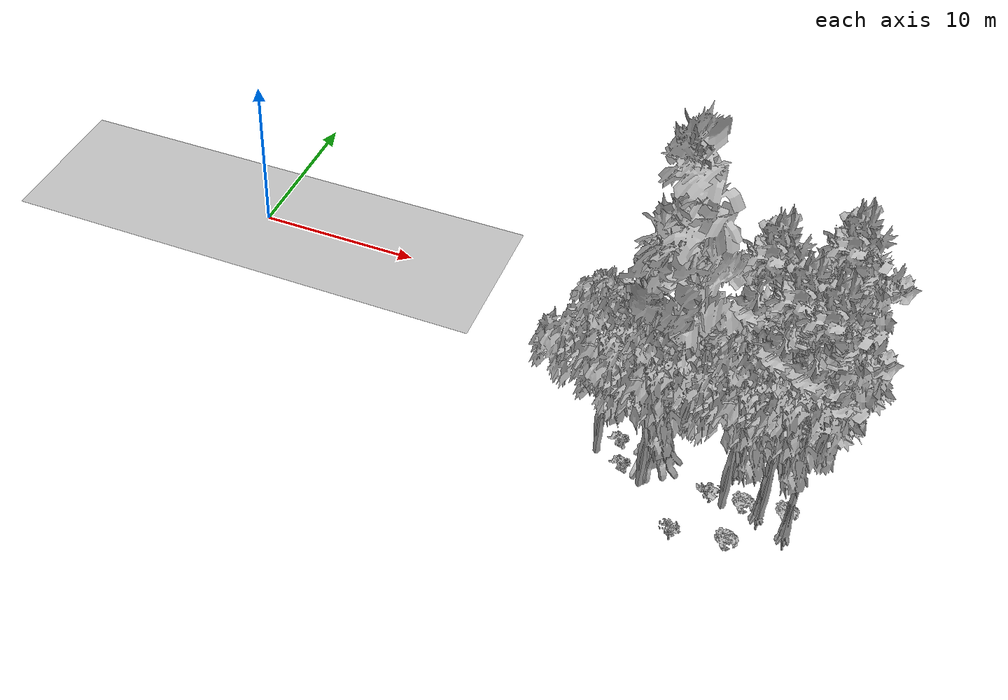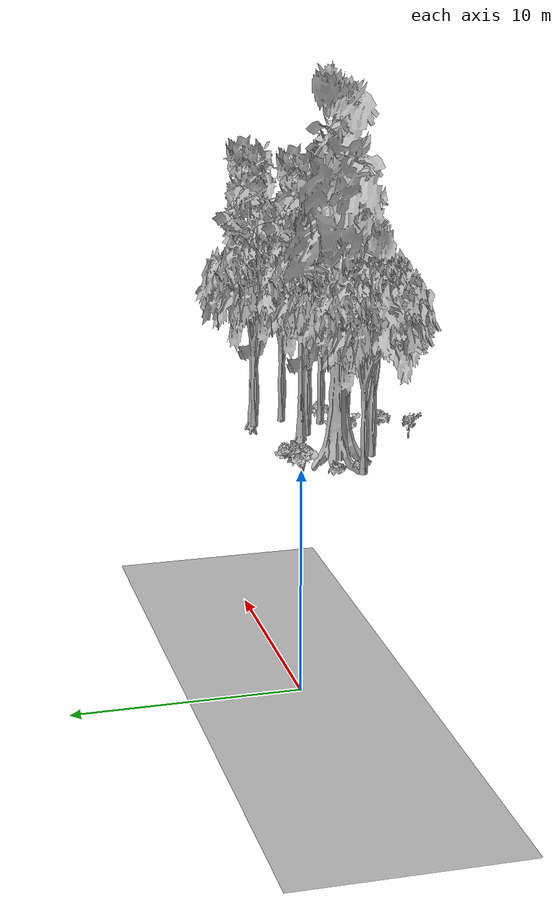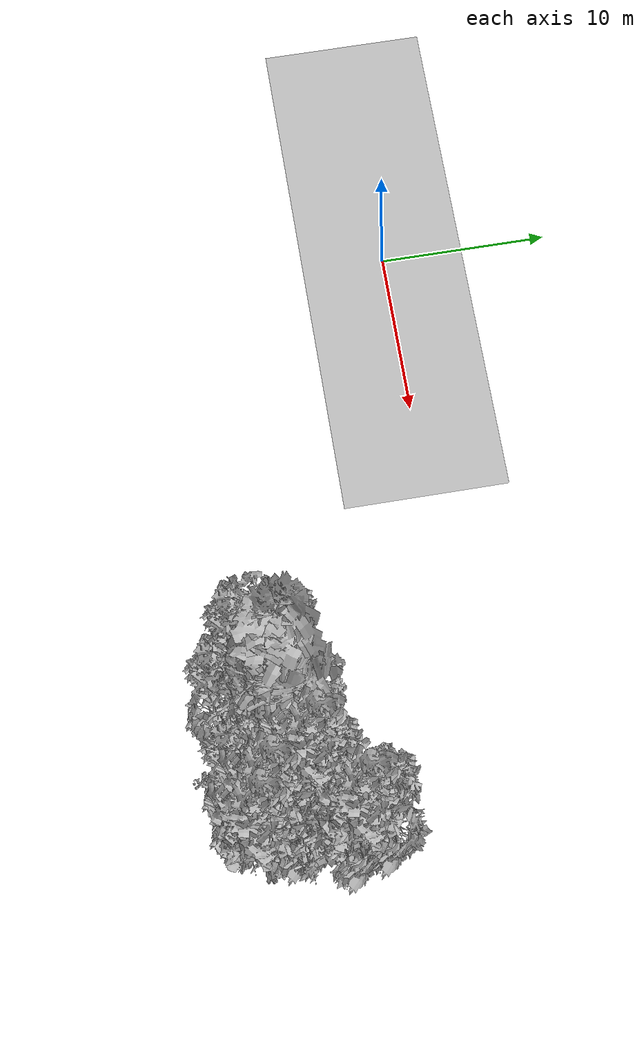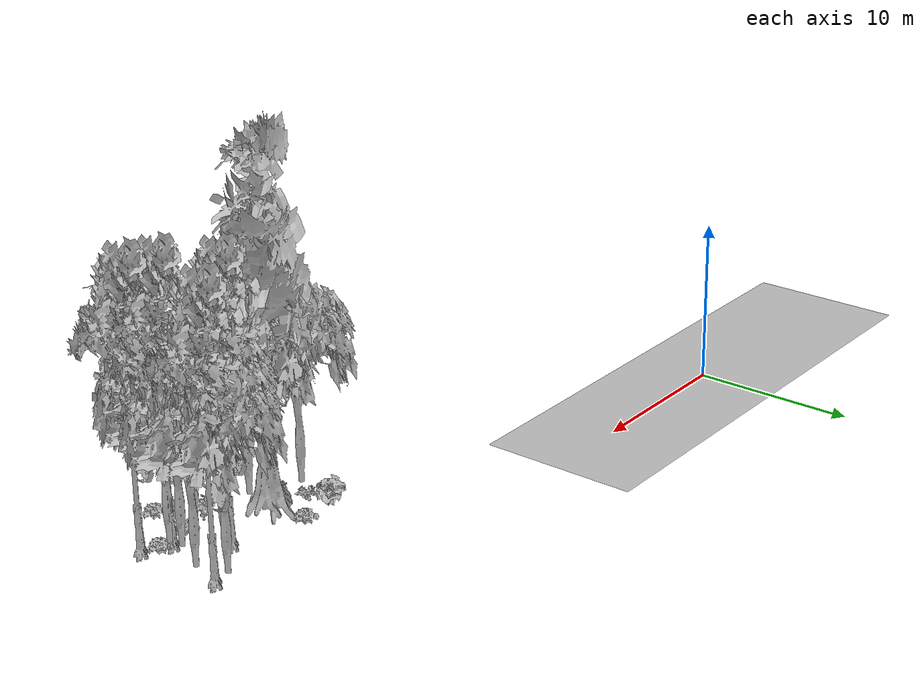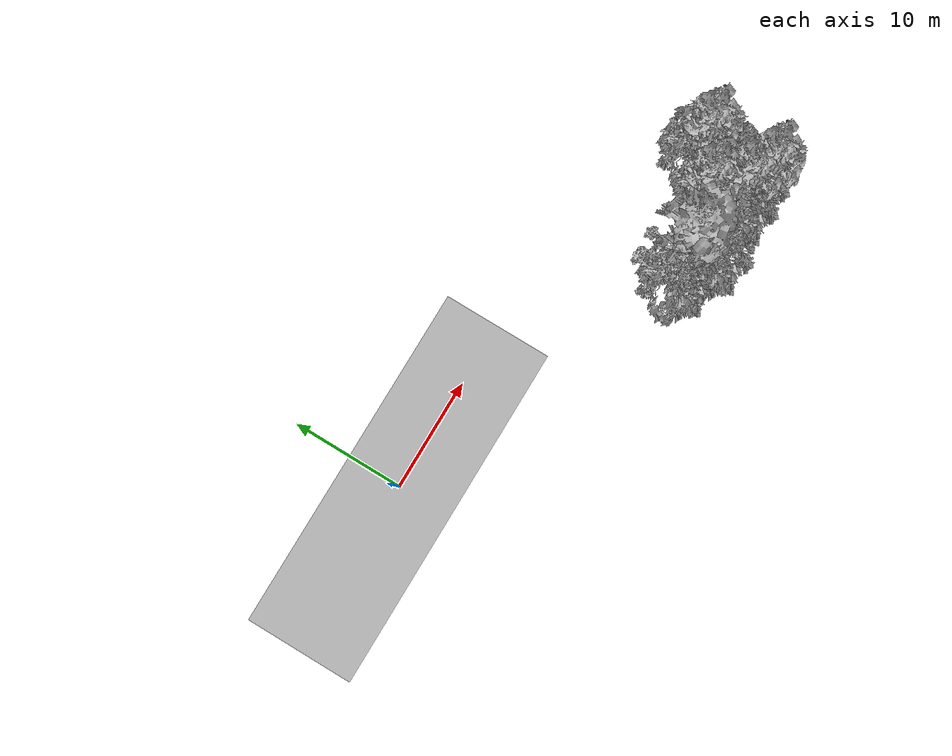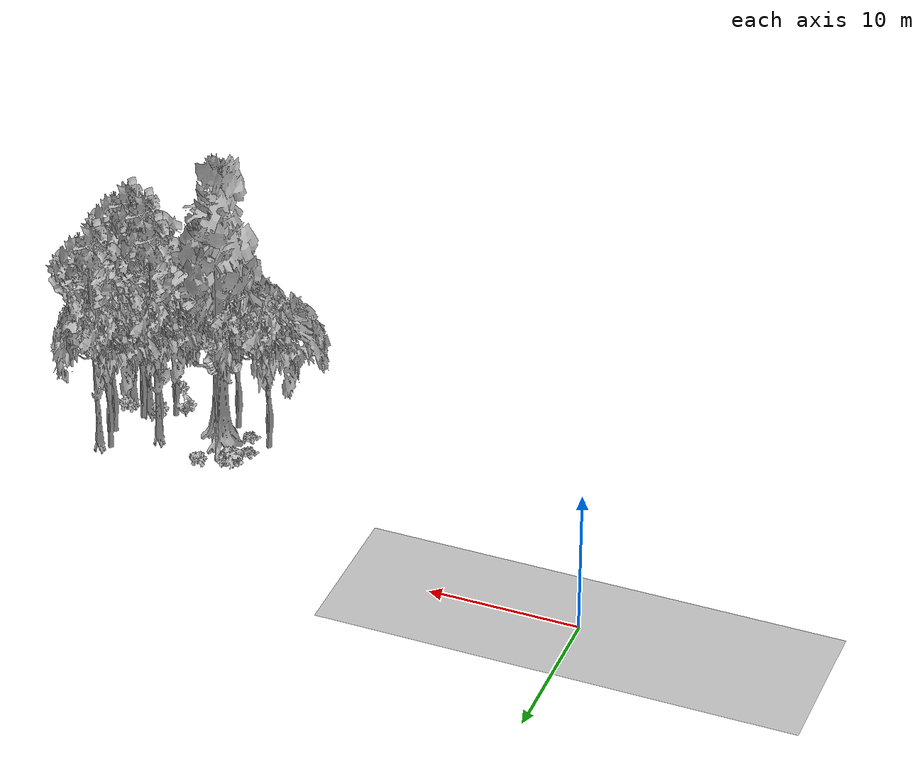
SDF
<sdf version="1.7">
 <world name="default">
  <model name="ground_plane">
   <static>1</static>
   <link name="link">
    <collision name="collision">
     <geometry><plane><normal>0 0 1</normal><size>100 100</size></plane></geometry>
     <surface><contact><ode><min_depth>0.01</min_depth><max_vel>0</max_vel></ode></contact></surface>
    </collision>
    <visual name="grass">
     <cast_shadows>0</cast_shadows>
     <geometry>
      <mesh>
       <scale>0.5814285714285714 0.18142857142857144 0.1</scale>
       <uri>file://grass_plane/meshes/grass_plane.dae</uri>
      </mesh>
     </geometry>
    </visual>
   </link>
  </model>
  <model name="Tree 71">
   <static>1</static>
   <pose>32.85542896784115 -9.391378885305599 0 1.57079 -0 0</pose>
   <link name="link">
    <collision name="collision">
     <geometry><mesh><scale>3.5 5 3.5</scale><uri>model://tree_2/meshes/tree_2.obj</uri></mesh></geometry>
    </collision>
    <visual name="visual">
     <geometry><mesh><scale>3.5 5 3.5</scale><uri>model://tree_2/meshes/tree_2.obj</uri></mesh></geometry>
    </visual>
   </link>
  </model>
  <model name="Tree 111">
   <static>1</static>
   <pose>25.50186110639366 -10.625485383496958 0 1.57079 -0 0</pose>
   <link name="link">
    <collision name="collision">
     <geometry><mesh><scale>3.5 5 3.5</scale><uri>model://tree_2/meshes/tree_2.obj</uri></mesh></geometry>
    </collision>
    <visual name="visual">
     <geometry><mesh><scale>3.5 5 3.5</scale><uri>model://tree_2/meshes/tree_2.obj</uri></mesh></geometry>
    </visual>
   </link>
  </model>
  <model name="Tree 123">
   <static>1</static>
   <pose>34.71793079070149 -11.499856890942894 0 1.57079 -0 0</pose>
   <link name="link">
    <collision name="collision">
     <geometry><mesh><scale>3.5 5 3.5</scale><uri>model://tree_9/meshes/tree_9.obj</uri></mesh></geometry>
    </collision>
    <visual name="visual">
     <geometry><mesh><scale>3.5 5 3.5</scale><uri>model://tree_9/meshes/tree_9.obj</uri></mesh></geometry>
    </visual>
   </link>
  </model>
  <model name="Tree 154">
   <static>1</static>
   <pose>35.760697000599706 -8.583738661684457 0 1.57079 -0 0</pose>
   <link name="link">
    <collision name="collision">
     <geometry><mesh><scale>3.5 5 3.5</scale><uri>model://tree_2/meshes/tree_2.obj</uri></mesh></geometry>
    </collision>
    <visual name="visual">
     <geometry><mesh><scale>3.5 5 3.5</scale><uri>model://tree_2/meshes/tree_2.obj</uri></mesh></geometry>
    </visual>
   </link>
  </model>
  <model name="Tree 169">
   <static>1</static>
   <pose>28.700766603298447 -10.02496743410266 0 1.57079 -0 0</pose>
   <link name="link">
    <collision name="collision">
     <geometry><mesh><scale>3.5 5 3.5</scale><uri>model://tree_4/meshes/tree_4.obj</uri></mesh></geometry>
    </collision>
    <visual name="visual">
     <geometry><mesh><scale>3.5 5 3.5</scale><uri>model://tree_4/meshes/tree_4.obj</uri></mesh></geometry>
    </visual>
   </link>
  </model>
  <model name="Tree 212">
   <static>1</static>
   <pose>35.23533388131564 -6.788522596009198 0 1.57079 -0 0</pose>
   <link name="link">
    <collision name="collision">
     <geometry><mesh><scale>3.5 5 3.5</scale><uri>model://tree_2/meshes/tree_2.obj</uri></mesh></geometry>
    </collision>
    <visual name="visual">
     <geometry><mesh><scale>3.5 5 3.5</scale><uri>model://tree_2/meshes/tree_2.obj</uri></mesh></geometry>
    </visual>
   </link>
  </model>
  <model name="Tree 290">
   <static>1</static>
   <pose>34.70076756764627 -10.707112279395858 0 1.57079 -0 0</pose>
   <link name="link">
    <collision name="collision">
     <geometry><mesh><scale>3.5 5 3.5</scale><uri>model://tree_2/meshes/tree_2.obj</uri></mesh></geometry>
    </collision>
    <visual name="visual">
     <geometry><mesh><scale>3.5 5 3.5</scale><uri>model://tree_2/meshes/tree_2.obj</uri></mesh></geometry>
    </visual>
   </link>
  </model>
  <model name="Tree 307">
   <static>1</static>
   <pose>36.20050759708258 -6.866669261824706 0 1.57079 -0 0</pose>
   <link name="link">
    <collision name="collision">
     <geometry><mesh><scale>3.5 5 3.5</scale><uri>model://tree_9/meshes/tree_9.obj</uri></mesh></geometry>
    </collision>
    <visual name="visual">
     <geometry><mesh><scale>3.5 5 3.5</scale><uri>model://tree_9/meshes/tree_9.obj</uri></mesh></geometry>
    </visual>
   </link>
  </model>
  <model name="Tree 322">
   <static>1</static>
   <pose>36.287920035975475 -12.27638675648687 0 1.57079 -0 0</pose>
   <link name="link">
    <collision name="collision">
     <geometry><mesh><scale>3.5 5 3.5</scale><uri>model://tree_9/meshes/tree_9.obj</uri></mesh></geometry>
    </collision>
    <visual name="visual">
     <geometry><mesh><scale>3.5 5 3.5</scale><uri>model://tree_9/meshes/tree_9.obj</uri></mesh></geometry>
    </visual>
   </link>
  </model>
  <model name="Tree 332">
   <static>1</static>
   <pose>34.771789718053924 -11.56673470594864 0 1.57079 -0 0</pose>
   <link name="link">
    <collision name="collision">
     <geometry><mesh><scale>3.5 5 3.5</scale><uri>model://tree_2/meshes/tree_2.obj</uri></mesh></geometry>
    </collision>
    <visual name="visual">
     <geometry><mesh><scale>3.5 5 3.5</scale><uri>model://tree_2/meshes/tree_2.obj</uri></mesh></geometry>
    </visual>
   </link>
  </model>
  <model name="Tree 372">
   <static>1</static>
   <pose>32.8470895179812 -8.96494967145888 0 1.57079 -0 0</pose>
   <link name="link">
    <collision name="collision">
     <geometry><mesh><scale>3.5 5 3.5</scale><uri>model://tree_9/meshes/tree_9.obj</uri></mesh></geometry>
    </collision>
    <visual name="visual">
     <geometry><mesh><scale>3.5 5 3.5</scale><uri>model://tree_9/meshes/tree_9.obj</uri></mesh></geometry>
    </visual>
   </link>
  </model>
  <model name="Tree 377">
   <static>1</static>
   <pose>28.311311147937076 -11.969031241846658 0 1.57079 -0 0</pose>
   <link name="link">
    <collision name="collision">
     <geometry><mesh><scale>3.5 5 3.5</scale><uri>model://tree_2/meshes/tree_2.obj</uri></mesh></geometry>
    </collision>
    <visual name="visual">
     <geometry><mesh><scale>3.5 5 3.5</scale><uri>model://tree_2/meshes/tree_2.obj</uri></mesh></geometry>
    </visual>
   </link>
  </model>
  <model name="Tree 443">
   <static>1</static>
   <pose>32.758071684314444 -11.693131135920261 0 1.57079 -0 0</pose>
   <link name="link">
    <collision name="collision">
     <geometry><mesh><scale>3.5 5 3.5</scale><uri>model://tree_2/meshes/tree_2.obj</uri></mesh></geometry>
    </collision>
    <visual name="visual">
     <geometry><mesh><scale>3.5 5 3.5</scale><uri>model://tree_2/meshes/tree_2.obj</uri></mesh></geometry>
    </visual>
   </link>
  </model>
  <model name="Bush 3">
   <static>1</static>
   <pose>33.701393477997456 -14.008435603958224 0 1.57079 -0 0</pose>
   <link name="link">
    <collision name="collision">
     <geometry><mesh><scale>2 2 2</scale><uri>model://bush_3/meshes/bush_3.obj</uri></mesh></geometry>
     <surface><contact><collide_without_contact>false</collide_without_contact></contact></surface>
    </collision>
    <visual name="visual">
     <geometry><mesh><scale>2 2 2</scale><uri>model://bush_3/meshes/bush_3.obj</uri></mesh></geometry>
    </visual>
   </link>
  </model>
  <model name="Bush 53">
   <static>1</static>
   <pose>29.20040797049282 -7.029953577073039 0 1.57079 -0 0</pose>
   <link name="link">
    <collision name="collision">
     <geometry><mesh><scale>2 2 2</scale><uri>model://bush_3/meshes/bush_3.obj</uri></mesh></geometry>
     <surface><contact><collide_without_contact>false</collide_without_contact></contact></surface>
    </collision>
    <visual name="visual">
     <geometry><mesh><scale>2 2 2</scale><uri>model://bush_3/meshes/bush_3.obj</uri></mesh></geometry>
    </visual>
   </link>
  </model>
  <model name="Bush 98">
   <static>1</static>
   <pose>33.939967467301855 -11.296750757842393 0 1.57079 -0 0</pose>
   <link name="link">
    <collision name="collision">
     <geometry><mesh><scale>2 2 2</scale><uri>model://bush_3/meshes/bush_3.obj</uri></mesh></geometry>
     <surface><contact><collide_without_contact>false</collide_without_contact></contact></surface>
    </collision>
    <visual name="visual">
     <geometry><mesh><scale>2 2 2</scale><uri>model://bush_3/meshes/bush_3.obj</uri></mesh></geometry>
    </visual>
   </link>
  </model>
  <model name="Bush 145">
   <static>1</static>
   <pose>32.165468919229625 -11.698501100419893 0 1.57079 -0 0</pose>
   <link name="link">
    <collision name="collision">
     <geometry><mesh><scale>2 2 2</scale><uri>model://bush_0/meshes/bush_0.obj</uri></mesh></geometry>
     <surface><contact><collide_without_contact>false</collide_without_contact></contact></surface>
    </collision>
    <visual name="visual">
     <geometry><mesh><scale>2 2 2</scale><uri>model://bush_0/meshes/bush_0.obj</uri></mesh></geometry>
    </visual>
   </link>
  </model>
  <model name="Bush 199">
   <static>1</static>
   <pose>30.893418366072183 -14.924277759651574 0 1.57079 -0 0</pose>
   <link name="link">
    <collision name="collision">
     <geometry><mesh><scale>2 2 2</scale><uri>model://bush_5/meshes/bush_5.obj</uri></mesh></geometry>
     <surface><contact><collide_without_contact>false</collide_without_contact></contact></surface>
    </collision>
    <visual name="visual">
     <geometry><mesh><scale>2 2 2</scale><uri>model://bush_5/meshes/bush_5.obj</uri></mesh></geometry>
    </visual>
   </link>
  </model>
  <model name="Bush 280">
   <static>1</static>
   <pose>26.51389853193207 -9.40509359059928 0 1.57079 -0 0</pose>
   <link name="link">
    <collision name="collision">
     <geometry><mesh><scale>2 2 2</scale><uri>model://bush_2/meshes/bush_2.obj</uri></mesh></geometry>
     <surface><contact><collide_without_contact>false</collide_without_contact></contact></surface>
    </collision>
    <visual name="visual">
     <geometry><mesh><scale>2 2 2</scale><uri>model://bush_2/meshes/bush_2.obj</uri></mesh></geometry>
    </visual>
   </link>
  </model>
  <model name="Bush 293">
   <static>1</static>
   <pose>27.09148882482404 -11.032348907352926 0 1.57079 -0 0</pose>
   <link name="link">
    <collision name="collision">
     <geometry><mesh><scale>2 2 2</scale><uri>model://bush_2/meshes/bush_2.obj</uri></mesh></geometry>
     <surface><contact><collide_without_contact>false</collide_without_contact></contact></surface>
    </collision>
    <visual name="visual">
     <geometry><mesh><scale>2 2 2</scale><uri>model://bush_2/meshes/bush_2.obj</uri></mesh></geometry>
    </visual>
   </link>
  </model>
  <model name="Bush 301">
   <static>1</static>
   <pose>36.180624255754836 -10.990453184294093 0 1.57079 -0 0</pose>
   <link name="link">
    <collision name="collision">
     <geometry><mesh><scale>2 2 2</scale><uri>model://bush_3/meshes/bush_3.obj</uri></mesh></geometry>
     <surface><contact><collide_without_contact>false</collide_without_contact></contact></surface>
    </collision>
    <visual name="visual">
     <geometry><mesh><scale>2 2 2</scale><uri>model://bush_3/meshes/bush_3.obj</uri></mesh></geometry>
    </visual>
   </link>
  </model>
  <model name="Bush 312">
   <static>1</static>
   <pose>26.842734994866788 -7.470657560223042 0 1.57079 -0 0</pose>
   <link name="link">
    <collision name="collision">
     <geometry><mesh><scale>2 2 2</scale><uri>model://bush_1/meshes/bush_1.obj</uri></mesh></geometry>
     <surface><contact><collide_without_contact>false</collide_without_contact></contact></surface>
    </collision>
    <visual name="visual">
     <geometry><mesh><scale>2 2 2</scale><uri>model://bush_1/meshes/bush_1.obj</uri></mesh></geometry>
    </visual>
   </link>
  </model>
 </world>
</sdf>
